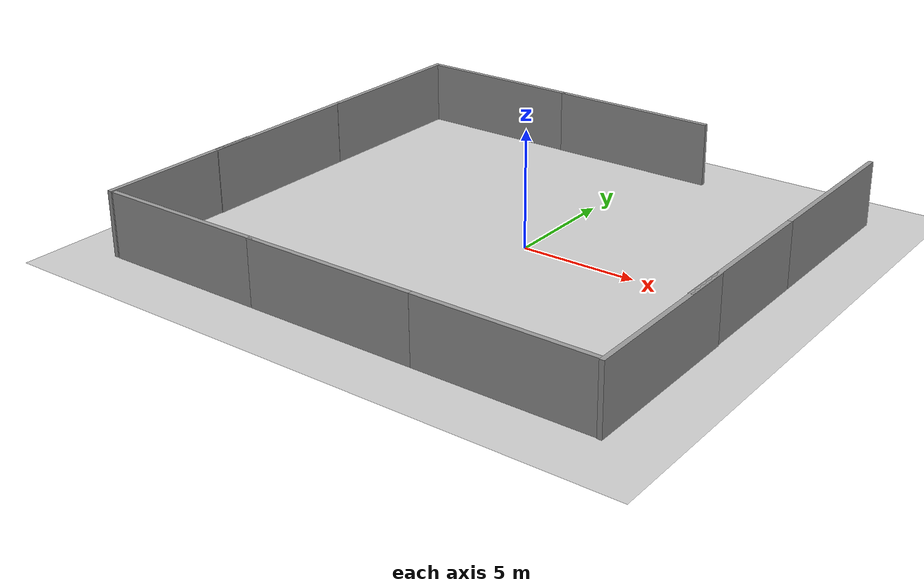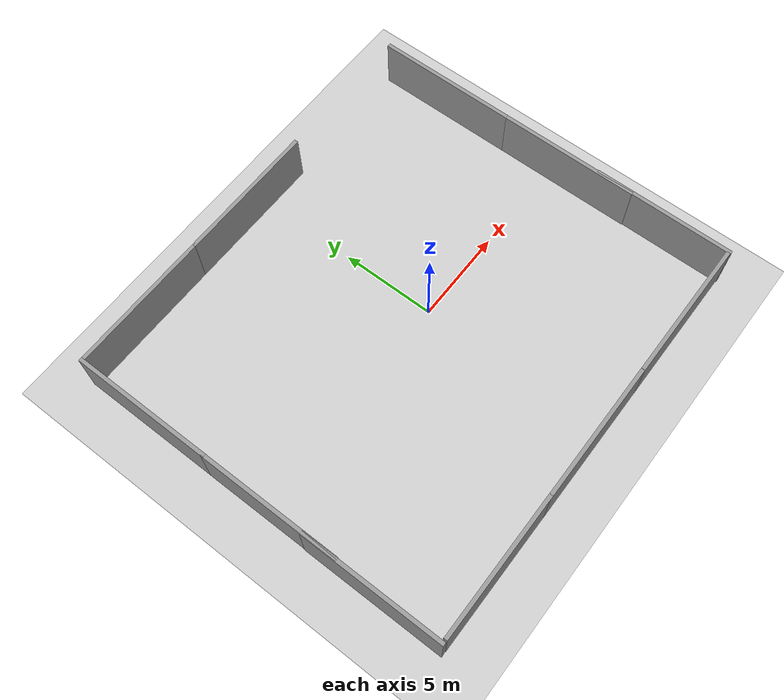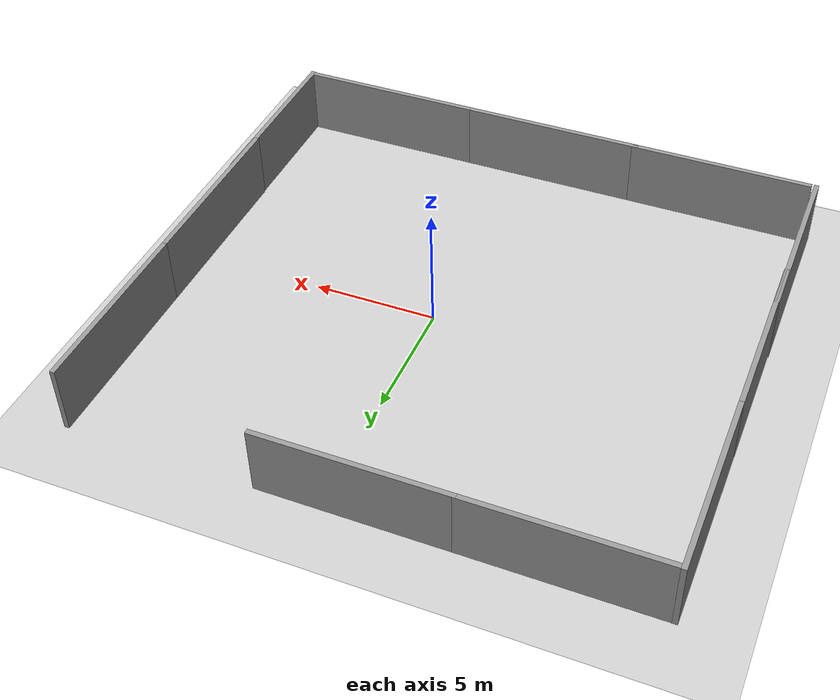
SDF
<sdf version="1.6">
 <world name="default">
  <model name="ground_plane">
   <static>1</static>
   <link name="link">
    <collision name="collision">
     <geometry><plane><normal>0 0 1</normal><size>100 100</size></plane></geometry>
     <surface><friction><ode><mu>100</mu><mu2>50</mu2></ode></friction></surface>
    </collision>
    <visual name="visual">
     <cast_shadows>0</cast_shadows>
     <geometry><plane><normal>0 0 1</normal><size>100 100</size></plane></geometry>
     <material>
      <script><uri>file://media/materials/scripts/gazebo.material</uri><name>Gazebo/Grey</name></script>
     </material>
    </visual>
   </link>
  </model>
  <light name="sun" type="directional">
   <pose>0 0 10 0 -0 0</pose>
   <diffuse>0.8 0.8 0.8 1</diffuse>
   <specular>0.1 0.1 0.1 1</specular>
   <attenuation>
    <range>1000</range>
    <constant>0.9</constant>
    <linear>0.01</linear>
    <quadratic>0.001</quadratic>
   </attenuation>
   <direction>-0.5 0.5 -1</direction>
  </light>
  <gravity>0 0 -9.8</gravity>
  <magnetic_field>6e-06 2.3e-05 -4.2e-05</magnetic_field>
  <atmosphere type="adiabatic"/>
  <physics name="default_physics" default="0" type="ode">
   <max_step_size>0.001</max_step_size>
   <real_time_factor>1</real_time_factor>
   <real_time_update_rate>1000</real_time_update_rate>
  </physics>
  <scene><ambient>0.4 0.4 0.4 1</ambient><background>0.7 0.7 0.7 1</background><shadows>1</shadows></scene>
  <spherical_coordinates>
   <surface_model>EARTH_WGS84</surface_model>
   <latitude_deg>0</latitude_deg>
   <longitude_deg>0</longitude_deg>
   <elevation>0</elevation>
   <heading_deg>0</heading_deg>
  </spherical_coordinates>
  <model name="grey_wall_clone">
   <static>1</static>
   <link name="link">
    <pose>0 0 1.4 0 -0 0</pose>
    <collision name="collision"><geometry><box><size>7.5 0.2 2.8</size></box></geometry></collision>
    <visual name="visual">
     <cast_shadows>0</cast_shadows>
     <geometry><box><size>7.5 0.2 2.8</size></box></geometry>
     <material>
      <script>
       <uri>model://grey_wall/materials/scripts</uri>
       <uri>model://grey_wall/materials/textures</uri>
       <name>vrc/grey_wall</name>
      </script>
     </material>
    </visual>
   </link>
   <pose>-1.29294 10.1077 0 0 -0 0</pose>
  </model>
  <model name="grey_wall_clone_0">
   <static>1</static>
   <link name="link">
    <pose>0 0 1.4 0 -0 0</pose>
    <collision name="collision"><geometry><box><size>7.5 0.2 2.8</size></box></geometry></collision>
    <visual name="visual">
     <cast_shadows>0</cast_shadows>
     <geometry><box><size>7.5 0.2 2.8</size></box></geometry>
     <material>
      <script>
       <uri>model://grey_wall/materials/scripts</uri>
       <uri>model://grey_wall/materials/textures</uri>
       <name>vrc/grey_wall</name>
      </script>
     </material>
    </visual>
   </link>
   <pose>-8.66061 10.108 0 0 -0 0</pose>
  </model>
  <model name="grey_wall_clone_1">
   <static>1</static>
   <link name="link">
    <pose>0 0 1.4 0 -0 0</pose>
    <collision name="collision"><geometry><box><size>7.5 0.2 2.8</size></box></geometry></collision>
    <visual name="visual">
     <cast_shadows>0</cast_shadows>
     <geometry><box><size>7.5 0.2 2.8</size></box></geometry>
     <material>
      <script>
       <uri>model://grey_wall/materials/scripts</uri>
       <uri>model://grey_wall/materials/textures</uri>
       <name>vrc/grey_wall</name>
      </script>
     </material>
    </visual>
   </link>
   <pose>6.20427 -10.1032 0 0 -0 0</pose>
  </model>
  <model name="grey_wall_clone_2">
   <static>1</static>
   <link name="link">
    <pose>0 0 1.4 0 -0 0</pose>
    <collision name="collision"><geometry><box><size>7.5 0.2 2.8</size></box></geometry></collision>
    <visual name="visual">
     <cast_shadows>0</cast_shadows>
     <geometry><box><size>7.5 0.2 2.8</size></box></geometry>
     <material>
      <script>
       <uri>model://grey_wall/materials/scripts</uri>
       <uri>model://grey_wall/materials/textures</uri>
       <name>vrc/grey_wall</name>
      </script>
     </material>
    </visual>
   </link>
   <pose>-1.29854 -10.1003 0 0 -0 0</pose>
  </model>
  <model name="grey_wall_clone_3">
   <static>1</static>
   <link name="link">
    <pose>0 0 1.4 0 -0 0</pose>
    <collision name="collision"><geometry><box><size>7.5 0.2 2.8</size></box></geometry></collision>
    <visual name="visual">
     <cast_shadows>0</cast_shadows>
     <geometry><box><size>7.5 0.2 2.8</size></box></geometry>
     <material>
      <script>
       <uri>model://grey_wall/materials/scripts</uri>
       <uri>model://grey_wall/materials/textures</uri>
       <name>vrc/grey_wall</name>
      </script>
     </material>
    </visual>
   </link>
   <pose>-8.55924 -10.0971 0 0 -0 0</pose>
  </model>
  <model name="grey_wall_clone_4">
   <static>1</static>
   <link name="link">
    <pose>0 0 1.4 0 -0 0</pose>
    <collision name="collision"><geometry><box><size>7.5 0.2 2.8</size></box></geometry></collision>
    <visual name="visual">
     <cast_shadows>0</cast_shadows>
     <geometry><box><size>7.5 0.2 2.8</size></box></geometry>
     <material>
      <script>
       <uri>model://grey_wall/materials/scripts</uri>
       <uri>model://grey_wall/materials/textures</uri>
       <name>vrc/grey_wall</name>
      </script>
     </material>
    </visual>
   </link>
   <pose>9.98337 6.41879 0 0 0 -1.5707</pose>
  </model>
  <model name="grey_wall_clone_4_clone">
   <static>1</static>
   <link name="link">
    <pose>0 0 1.4 0 -0 0</pose>
    <collision name="collision"><geometry><box><size>7.5 0.2 2.8</size></box></geometry></collision>
    <visual name="visual">
     <cast_shadows>0</cast_shadows>
     <geometry><box><size>7.5 0.2 2.8</size></box></geometry>
     <material>
      <script>
       <uri>model://grey_wall/materials/scripts</uri>
       <uri>model://grey_wall/materials/textures</uri>
       <name>vrc/grey_wall</name>
      </script>
     </material>
    </visual>
   </link>
   <pose>9.98423 -1.01639 0 0 0 -1.5707</pose>
  </model>
  <model name="grey_wall_clone_4_clone_0">
   <static>1</static>
   <link name="link">
    <pose>0 0 1.4 0 -0 0</pose>
    <collision name="collision"><geometry><box><size>7.5 0.2 2.8</size></box></geometry></collision>
    <visual name="visual">
     <cast_shadows>0</cast_shadows>
     <geometry><box><size>7.5 0.2 2.8</size></box></geometry>
     <material>
      <script>
       <uri>model://grey_wall/materials/scripts</uri>
       <uri>model://grey_wall/materials/textures</uri>
       <name>vrc/grey_wall</name>
      </script>
     </material>
    </visual>
   </link>
   <pose>10.0143 -6.48369 0 0 0 -1.5707</pose>
  </model>
  <model name="grey_wall_clone_4_clone_1">
   <static>1</static>
   <link name="link">
    <pose>0 0 1.4 0 -0 0</pose>
    <collision name="collision"><geometry><box><size>7.5 0.2 2.8</size></box></geometry></collision>
    <visual name="visual">
     <cast_shadows>0</cast_shadows>
     <geometry><box><size>7.5 0.2 2.8</size></box></geometry>
     <material>
      <script>
       <uri>model://grey_wall/materials/scripts</uri>
       <uri>model://grey_wall/materials/textures</uri>
       <name>vrc/grey_wall</name>
      </script>
     </material>
    </visual>
   </link>
   <pose>-12.4525 6.466 0 0 0 -1.5707</pose>
  </model>
  <model name="grey_wall_clone_4_clone_2">
   <static>1</static>
   <link name="link">
    <pose>0 0 1.4 0 -0 0</pose>
    <collision name="collision"><geometry><box><size>7.5 0.2 2.8</size></box></geometry></collision>
    <visual name="visual">
     <cast_shadows>0</cast_shadows>
     <geometry><box><size>7.5 0.2 2.8</size></box></geometry>
     <material>
      <script>
       <uri>model://grey_wall/materials/scripts</uri>
       <uri>model://grey_wall/materials/textures</uri>
       <name>vrc/grey_wall</name>
      </script>
     </material>
    </visual>
   </link>
   <pose>-12.457 -0.874323 0 0 0 -1.5707</pose>
  </model>
  <model name="grey_wall_clone_4_clone_3">
   <static>1</static>
   <link name="link">
    <pose>0 0 1.4 0 -0 0</pose>
    <collision name="collision"><geometry><box><size>7.5 0.2 2.8</size></box></geometry></collision>
    <visual name="visual">
     <cast_shadows>0</cast_shadows>
     <geometry><box><size>7.5 0.2 2.8</size></box></geometry>
     <material>
      <script>
       <uri>model://grey_wall/materials/scripts</uri>
       <uri>model://grey_wall/materials/textures</uri>
       <name>vrc/grey_wall</name>
      </script>
     </material>
    </visual>
   </link>
   <pose>-12.4853 -6.44067 0 0 0 -1.5707</pose>
  </model>
 </world>
</sdf>
